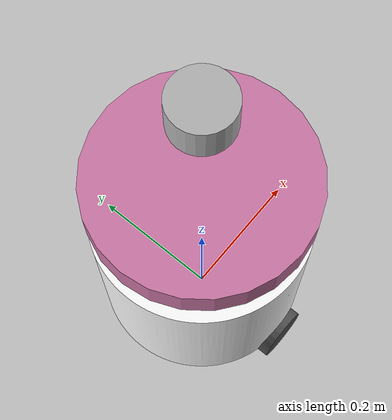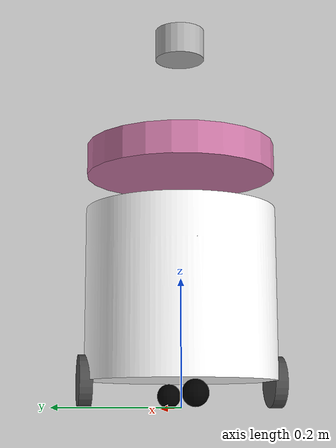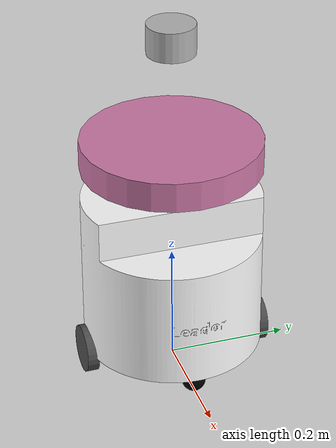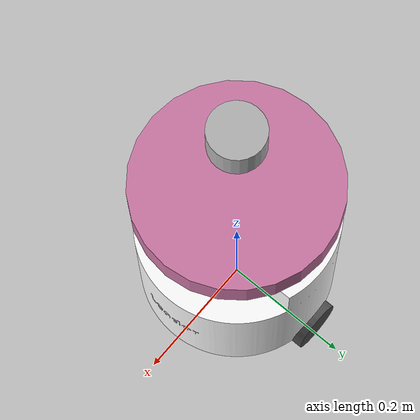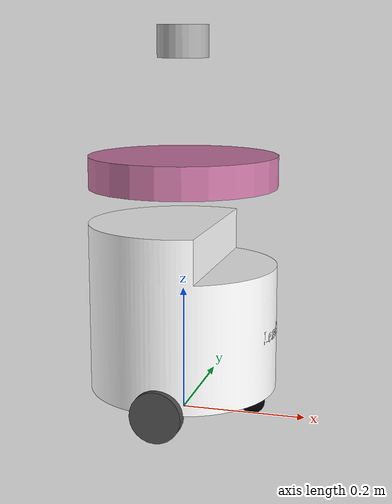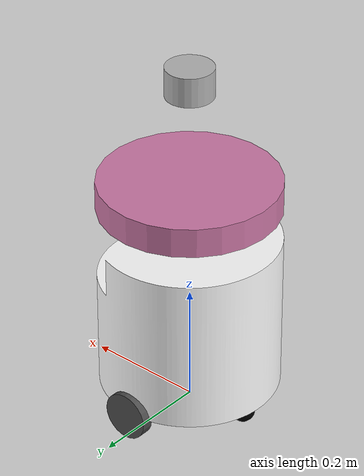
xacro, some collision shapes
<?xml version="1.0"?>
<robot name="differential_wheeled_robot" xmlns:xacro="http://www.ros.org/wiki/xacro">

  <xacro:include filename="$(find diff_robot)/urdf/wheel.urdf.xacro" />
  <xacro:include filename="$(find diff_robot)/urdf/kinect.urdf.xacro"/>
  <xacro:include filename="$(find diff_robot)/urdf/hokuyo.xacro"/>
  <xacro:include filename="$(find diff_robot)/urdf/block_laser.xacro"/>
<!-- Defining the colors used in this robot -->
  <material name="Black">
    <color rgba="0.0 0.0 0.0 1.0"/>
  </material>

  <material name="Red">
    <color rgba="0.8 0.0 0.0 1.0"/>
  </material>

  <material name="White">
    <color rgba="1.0 1.0 1.0 1.0"/>
  </material>

  <material name="Blue">
    <color rgba="0.0 0.0 0.8 1.0"/>
  </material>

  <!-- PROPERTY LIST -->
  <!--All units in m-kg-s-radians unit system -->
  <property name="M_PI" value="3.1415926535897931" />
  <property name="M_PI_2" value="1.570796327" />
  <property name="DEG_TO_RAD" value="0.017453293" />

  <!-- Main body radius and height -->
  <!-- Main Body Cylinder base   -->
  <property name="base_height" value="0.2" />
  <property name="base_radius" value="0.15" />
  <property name="base_mass" value="5" /> <!-- in kg-->

  <!-- caster wheel radius and height -->
  <!-- caster wheel mass -->
  <property name="caster_f_height" value="0.04" />
  <property name="caster_f_radius" value="0.0199" />
  <property name="caster_f_mass" value="0.5" /> <!-- in kg-->

  <!-- caster wheel radius and height -->
  <!-- caster wheel mass -->
  <property name="caster_b_height" value="0.04" />
  <property name="caster_b_radius" value="0.02" />
  <property name="caster_b_mass" value="0.5" /> <!-- in kg-->

  <!-- Wheels -->

  <property name="wheel_mass" value="2.5" /> --> <!-- in kg-->

  <property name="base_x_origin_to_wheel_origin" value="0.25" />
  <property name="base_y_origin_to_wheel_origin" value="0.3" />
  <property name="base_z_origin_to_wheel_origin" value="0.0" />

  <!-- Hokuyo Laser scanner -->
  <property name="hokuyo_size" value="0.05" />

  <!-- Macro for calculating inertia of cylinder -->
  <macro name="cylinder_inertia" params="m r h">
    <inertia  ixx="${m*(3*r*r+h*h)/12}" ixy = "0" ixz = "0"
              iyy="${m*(3*r*r+h*h)/12}" iyz = "0"
              izz="${m*r*r/2}" />
  </macro>

  <!-- BASE-FOOTPRINT -->
  <!-- base_footprint is a fictitious link(frame) that is on the ground right below base_link origin -->
  <link name="base_footprint">
    <inertial>
      <mass value="0.0001" />
      <origin xyz="0 0 0" />
      <inertia ixx="0.0001" ixy="0.0" ixz="0.0"
          iyy="0.0001" iyz="0.0"
          izz="0.0001" />
    </inertial>
    <visual>
        <origin xyz="0 0 0" rpy="0 0 0" />
        <geometry>
            <box size="0.001 0.001 0.001" />
        </geometry>
    </visual>
  </link>

  <gazebo reference="base_footprint">
    <turnGravityOff>false</turnGravityOff>
  </gazebo>

  <joint name="base_footprint_joint" type="fixed">
    <origin xyz="0 0 ${wheel_radius - base_z_origin_to_wheel_origin}" rpy="0 0 0" />
    <parent link="base_footprint"/>
    <child link="base_link" />
  </joint>

  <!-- BASE-LINK -->
  <!--Actual body/chassis of the robot-->
  <link name="base_link">
    <inertial>
      <mass value="${base_mass}" />
      <origin xyz="0 0 ${base_height/2}" />
      <!--The 3x3 rotational inertia matrix. -->
        <cylinder_inertia  m="${base_mass}" r="${base_radius}" h="${base_height}" />

    </inertial>
    <visual>
      <origin xyz="0 0 ${base_height/2+0.035}" rpy="0 0 0" />
      <geometry>
          <mesh filename="package://diff_robot/meshes/body.stl"/>
        </geometry>
      <material name="White" />
    </visual>
    <collision>
      <origin xyz="0 0 ${base_height/2}" rpy="0 0 0 " />
      <geometry>

          <cylinder length="${base_height}" radius="${base_radius}" />

      </geometry>
    </collision>
  </link>
  <gazebo reference="base_link">
    <turnGravityOff>false</turnGravityOff>

  </gazebo>

<!--Caster front  -->

    <link name="caster_front_link">

    <visual>
      <origin xyz="0 0.02 0" rpy="${M_PI/2} 0 0" />
      <geometry>
	<sphere radius="${caster_f_radius}" />
      </geometry>
      <material name="Black" />
    </visual>

      <collision>
        <geometry>

	<sphere radius="${caster_f_radius}" />

        </geometry>
      <origin xyz="0 0.02 0" rpy="${M_PI/2} 0 0" />
      </collision>
      <inertial>
        <mass value="${caster_f_mass}" />
        <origin xyz="0 0 0" />
        <inertia ixx="0.001" ixy="0.0" ixz="0.0"
                 iyy="0.001" iyz="0.0"
                 izz="0.001" />
      </inertial>
    </link>

 <joint name="caster_front_joint" type="fixed">
      <parent link="base_link"/>
      <child link="caster_front_link"/>
      <origin xyz="0.115 0.0 0" rpy="${-M_PI/2} 0 0"/>
    </joint>

  <gazebo reference="caster_front_link">
    <turnGravityOff>false</turnGravityOff>
  </gazebo>

<!--Caster back  -->

    <link name="caster_back_link">

    <visual>
      <origin xyz="0.02 0.02 0 " rpy="${M_PI/2} 0 0" />

      <geometry>

	<sphere radius="${caster_b_radius}" />

      </geometry>
      <material name="Black" />
    </visual>

      <collision>
        <geometry>
		<sphere radius="${caster_b_radius}" />
        </geometry>
      <origin xyz="0 0.02 0 " rpy="${M_PI/2} 0 0" />
      </collision>
      <inertial>
        <mass value="${caster_b_mass}" />
        <origin xyz="0 0 0" />
        <inertia ixx="0.001" ixy="0.0" ixz="0.0"
                 iyy="0.001" iyz="0.0"
                 izz="0.001" />
      </inertial>
    </link>

    <joint name="caster_back_joint" type="fixed">
      <parent link="base_link"/>
      <child link="caster_back_link"/>
      <origin xyz="-0.135 0.0 0" rpy="${-M_PI/2} 0 0"/>
    </joint>

  <gazebo reference="caster_back_link">
    <turnGravityOff>false</turnGravityOff>
  </gazebo>

<!-- Wheel Definitions -->

  <wheel fb="front" lr="right" parent="base_link" translateX="0" translateY="0.5" flipY="1"/>
  <wheel fb="front" lr="left" parent="base_link" translateX="0" translateY="-0.5" flipY="1"/>

<hokuyo_sensor size_="0.05" pl="base_link"/>
<velodyne_sensor pl="base_link"/>
<!--   Kinect -->

  <!-- Differential drive controller  -->
  <gazebo>
    <plugin name="differential_drive_controller" filename="libgazebo_ros_diff_drive.so">

      <publishWheelTF>false</publishWheelTF>

      <publishTf>1</publishTf>
      <publishWheelJointState>false</publishWheelJointState>
      <alwaysOn>true</alwaysOn>
      <updateRate>100.0</updateRate>
      <leftJoint>front_left_wheel_joint</leftJoint>
      <rightJoint>front_right_wheel_joint</rightJoint>
      <wheelSeparation>${2*base_radius}</wheelSeparation>
      <wheelDiameter>${2*wheel_radius}</wheelDiameter>
      <broadcastTF>1</broadcastTF>
      <wheelTorque>30</wheelTorque>
      <wheelAcceleration>1.8</wheelAcceleration>
      <commandTopic>cmd_vel</commandTopic>
      <odometryFrame>odom</odometryFrame>
      <odometryTopic>odom</odometryTopic>

      <robotBaseFrame>base_footprint</robotBaseFrame>

    </plugin>
  </gazebo>

</robot>

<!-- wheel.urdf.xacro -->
<robot name="wheel" xmlns:xacro="http://www.ros.org/wiki/xacro">

  <!-- Wheels -->
  <property name="wheel_radius" value="0.04" />
  <property name="wheel_height" value="0.02" />
  <property name="wheel_mass" value="2.5" /> <!-- in kg-->

  <macro name="cylinder_inertia" params="m r h">
    <inertia  ixx="${m*(3*r*r+h*h)/12}" ixy = "0" ixz = "0"
              iyy="${m*(3*r*r+h*h)/12}" iyz = "0"
              izz="${m*r*r/2}" />
  </macro>

  <xacro:macro name="wheel" params="fb lr parent translateX translateY flipY"> <!--fb : front, back ; lr: left, right -->
    <link name="${fb}_${lr}_wheel">
      <visual>
        <origin xyz="0 0 0" rpy="${flipY*M_PI/2} 0  0 " />
        <geometry>
          <cylinder length="${wheel_height}" radius="${wheel_radius}" />
        </geometry>
        <material name="DarkGray" />
      </visual>
      <collision>
        <origin xyz="0 0 0" rpy="${flipY*M_PI/2} 0 0 " />
        <geometry>
          <cylinder length="${wheel_height}" radius="${wheel_radius}" />
        </geometry>
      </collision>
      <inertial>
        <mass value="${wheel_mass}" />
        <origin xyz="0 0 0" />
        <cylinder_inertia  m="${wheel_mass}" r="${wheel_radius}" h="${wheel_height}" />
      </inertial>
    </link>

    <gazebo reference="${fb}_${lr}_wheel">
      <mu1 value="1.0"/>
      <mu2 value="1.0"/>
      <kp  value="10000000.0" />
      <kd  value="1.0" />
      <fdir1 value="1 0 0"/>
      <material>Gazebo/Grey</material>
      <turnGravityOff>false</turnGravityOff>
    </gazebo>

    <joint name="${fb}_${lr}_wheel_joint" type="continuous">
      <parent link="${parent}"/>
      <child link="${fb}_${lr}_wheel"/>
      <origin xyz="${translateX * base_x_origin_to_wheel_origin} ${translateY * base_y_origin_to_wheel_origin} ${base_z_origin_to_wheel_origin}" rpy="0 0 0" />
      <axis xyz="0 1 0" rpy="0  0" />
      <limit effort="100" velocity="100"/>
      <joint_properties damping="0.0" friction="0.0"/>
    </joint>

    <!-- Transmission is important to link the joints and the controller -->
    <transmission name="${fb}_${lr}_wheel_joint_trans">
      <type>transmission_interface/SimpleTransmission</type>
      <joint name="${fb}_${lr}_wheel_joint" />
      <actuator name="${fb}_${lr}_wheel_joint_motor">
        <hardwareInterface>EffortJointInterface</hardwareInterface>
        <mechanicalReduction>1</mechanicalReduction>
      </actuator>
    </transmission>

  </xacro:macro>

</robot>

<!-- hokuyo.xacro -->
<robot name="sensor" xmlns:xacro="http://www.ros.org/wiki/xacro">

  <xacro:macro name="hokuyo_sensor" params="size_ pl">
  <!-- Hokuyo Laser -->
  <link name="hokuyo_link">
    <collision>
      <origin xyz="0 0 0" rpy="0 0 0"/>
      <geometry>
        <cylinder length="0.05" radius="0.15" />
      </geometry>
    </collision>

    <visual>
      <origin xyz="0 0 0" rpy="0 0 0"/>
      <geometry>
        <mesh filename="package://diff_robot/meshes/hokuyo.dae"/>
      </geometry>
    </visual>

    <inertial>
      <mass value="1e-5" />
      <origin xyz="0 0 0" rpy="0 0 0"/>
      <inertia ixx="1e-6" ixy="0" ixz="0" iyy="1e-6" iyz="0" izz="1e-6" />
    </inertial>
  </link>

  <joint name="hokuyo_joint" type="fixed">
    <origin xyz="0 0 0.35" rpy="0 0 0" />
    <parent link="${pl}"/>
	<axis xyz="0 1 0" />
    <child link="hokuyo_link" />
  </joint>
 <gazebo reference="hokuyo_link">
    <sensor type="ray" name="ray">
      <pose>0 0 0 0 0 0</pose>
      <visualize>0</visualize>
      <update_rate>40</update_rate>
      <ray>
        <scan>
          <horizontal>
           <samples>1081</samples>
            <resolution>1</resolution>
            <min_angle>-3.14159</min_angle>
            <max_angle>3.14159</max_angle>
          </horizontal>
        </scan>
        <range>
          <min>0.16</min>
          <max>30.0</max>
          <resolution>0.01</resolution>
        </range>
        <noise>
          <type>gaussian</type>
          <mean>0.0</mean>
          <stddev>0.01</stddev>
        </noise>
      </ray>
      <plugin name="gazebo_ros_head_hokuyo_controller" filename="libgazebo_ros_laser.so">
        <topicName>base_scan</topicName>
        <frameName>hokuyo_link</frameName>
      </plugin>
    </sensor>
  </gazebo>
  </xacro:macro>

</robot>

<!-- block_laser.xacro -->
<robot name="sensor" xmlns:xacro="http://www.ros.org/wiki/xacro">

  <xacro:macro name="velodyne_sensor" params="pl">
  <link name="base_laser">
  <collision>
      <origin xyz="0 0 0" rpy="0 0 0"/>
      <geometry>

			<cylinder length="0.05" radius="0.04" />

      </geometry>
    </collision>

    <visual>
      <origin xyz="0 0 0" rpy="0 0 0"/>
      <geometry>
        <cylinder length="0.05" radius="0.04" />
      </geometry>
    </visual>

    <inertial>
      <mass value="0.00001" />
      <origin xyz="0 0 0.55" rpy="0 0 0"/>
      <inertia ixx="1e-6" ixy="0" ixz="0" iyy="1e-6" iyz="0" izz="1e-6" />
    </inertial>
   </link>
   <joint name="velodyne_joint" type="fixed">
    <origin xyz="0 0 0.55" rpy="0 0 0" />
    <parent link="${pl}"/>
	<axis xyz="0 0 0" />
    <child link="base_laser" />
  </joint>
   <gazebo reference="base_laser">
    <sensor name="laser_velodyne" type="ray">
    <update_rate>20.000000</update_rate>
    <ray>
      <scan>
        <horizontal>
          <samples>888</samples>

          <min_angle>-3.14159</min_angle>
          <max_angle>3.14159</max_angle>
        </horizontal>
        <vertical>
          <samples>16</samples>

          <min_angle>-0.2617</min_angle>
          <max_angle>0.2617</max_angle>
        </vertical>
      </scan>
      <range>
        <min>0.08</min>
        <max>60.0</max>
       <resolution>0.01</resolution>
      </range>

    </ray>

        <plugin name='velodyne_laser' filename='libblock_laser_16.so'>
        <topicName>/pointcloud</topicName>
        <frameName>base_laser</frameName>
        <gaussianNoise>0.01</gaussianNoise>
      </plugin>
      <always_on>1</always_on>
      <update_rate>20</update_rate>
      <visualize>0</visualize>
      </sensor>
  </gazebo>
  </xacro:macro>

</robot>
